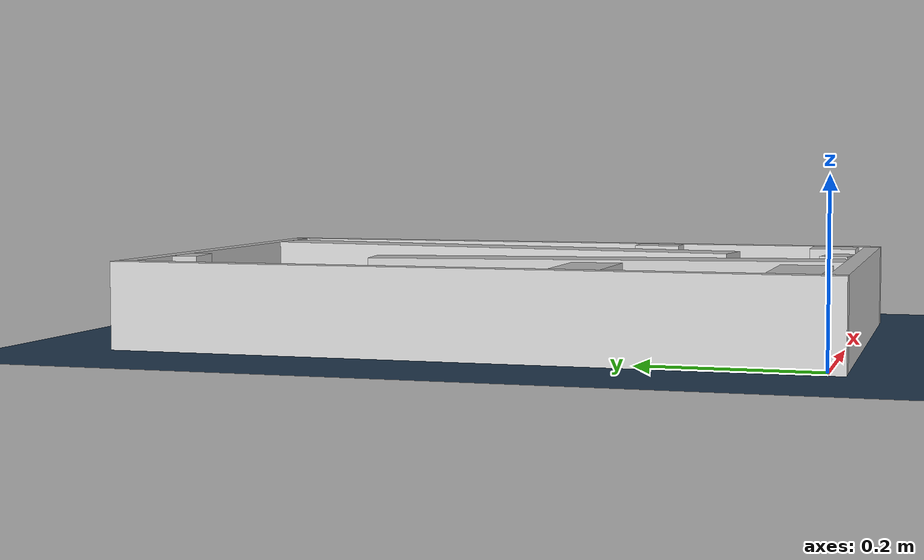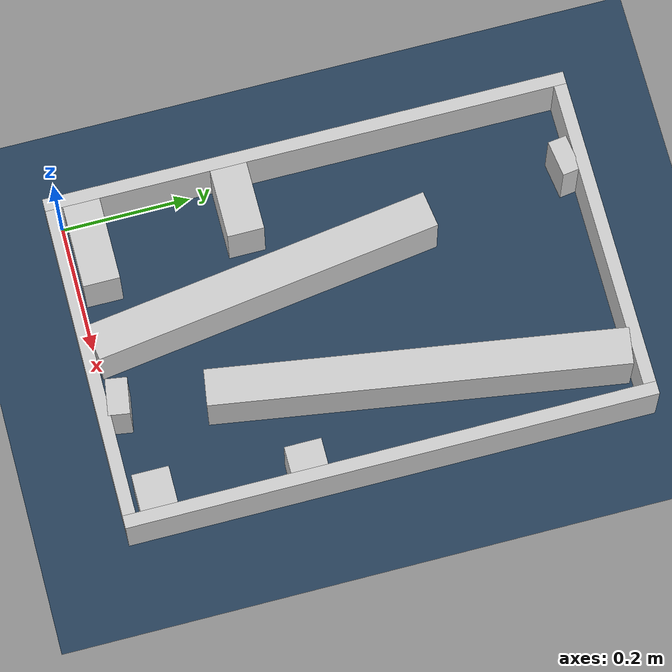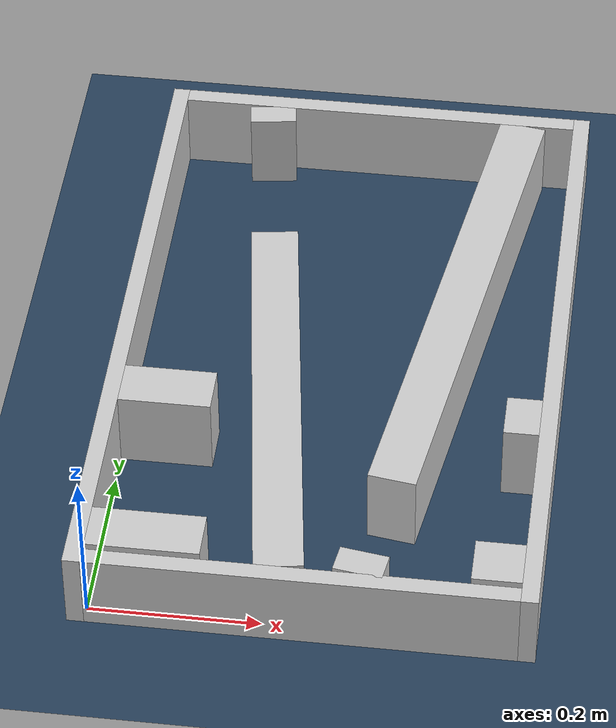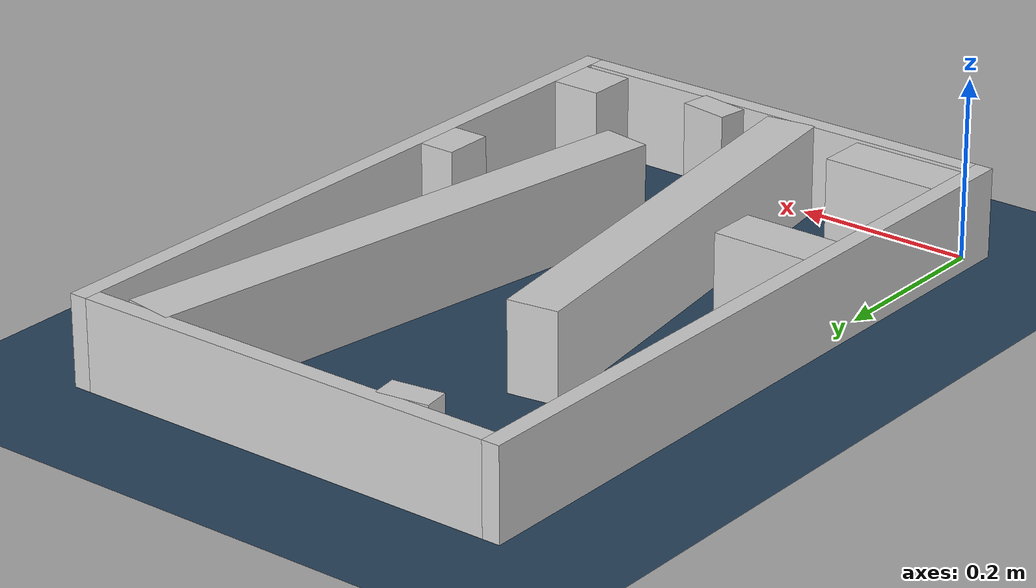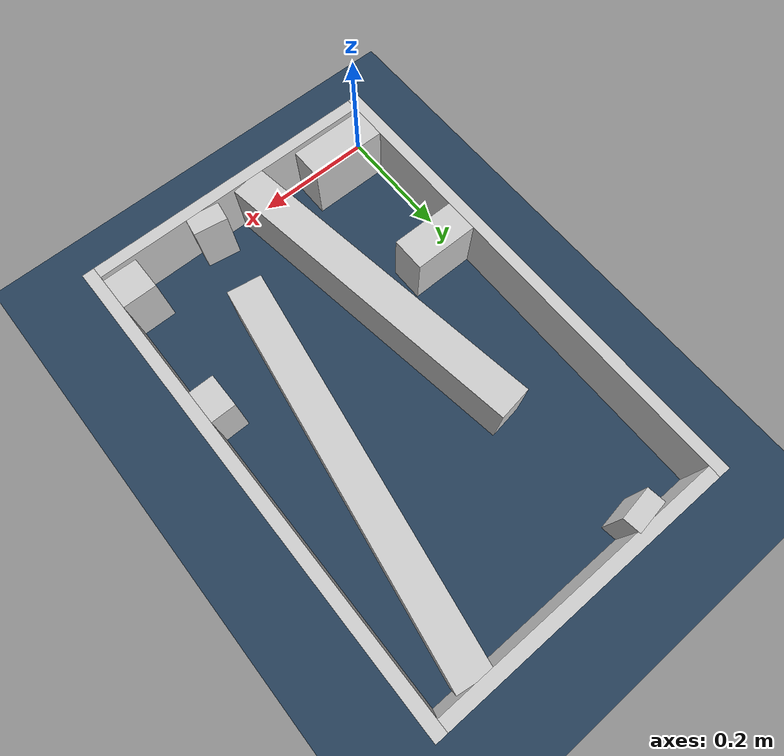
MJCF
<?xml version="1.0" ?>
<mujoco model="generated_real_template">
  <compiler angle="degree"/>
  <option timestep="0.002" integrator="implicitfast" iterations="100" cone="elliptic"/>
  <default>
    <geom density="1"/>
  </default>
  <asset>
    <texture builtin="gradient" height="3072" rgb1="0.3 0.5 0.7" rgb2="0 0 0" type="skybox" width="512"/>
    <texture builtin="checker" height="300" mark="edge" markrgb="0.8 0.8 0.8" name="groundplane" rgb1="0.2 0.3 0.4" rgb2="0.1 0.2 0.3" type="2d" width="300"/>
    <material name="groundplane" reflectance="0.2" texrepeat="5 5" texture="groundplane" texuniform="true"/>
  </asset>
  <worldbody>
    <light dir="0 0 -1" directional="true" pos="0 0 1.5"/>
    <geom name="floor" type="plane" condim="4" friction="0.5 0.005 0.001" material="groundplane" size="0 0 0.05"/>
    <body name="walls">
      <geom name="wall_boundary_left" type="box" condim="4" friction="1.0 0.005 0.0001" rgba="0.8 0.8 0.8 1" pos="-0.010000 0.387500 0.050000" euler="0 0 0.000000" size="0.010000 0.407500 0.050000"/>
      <geom name="wall_boundary_right" type="box" condim="4" friction="1.0 0.005 0.0001" rgba="0.8 0.8 0.8 1" pos="0.500000 0.387500 0.050000" euler="0 0 0.000000" size="0.010000 0.407500 0.050000"/>
      <geom name="wall_boundary_bottom" type="box" condim="4" friction="1.0 0.005 0.0001" rgba="0.8 0.8 0.8 1" pos="0.245000 -0.010000 0.050000" euler="0 0 0.000000" size="0.245000 0.010000 0.050000"/>
      <geom name="wall_boundary_top" type="box" condim="4" friction="1.0 0.005 0.0001" rgba="0.8 0.8 0.8 1" pos="0.245000 0.785000 0.050000" euler="0 0 0.000000" size="0.245000 0.010000 0.050000"/>
      <geom name="wall_inner_1_1" type="box" condim="4" friction="1.0 0.005 0.0001" rgba="0.8 0.8 0.8 1" pos="0.065232 0.035751 0.050000" euler="0 0 0.000000" size="0.065232 0.028500 0.050000"/>
      <geom name="wall_inner_1_2" type="box" condim="4" friction="1.0 0.005 0.0001" rgba="0.8 0.8 0.8 1" pos="0.461440 0.035751 0.050000" euler="0 0 0.000000" size="0.028560 0.028500 0.050000"/>
      <geom name="wall_inner_2_1" type="box" condim="4" friction="1.0 0.005 0.0001" rgba="0.8 0.8 0.8 1" pos="0.378516 0.460214 0.050000" euler="0 0 -98.796253" size="0.318532 0.028500 0.050000"/>
      <geom name="wall_inner_2_2" type="box" condim="4" friction="1.0 0.005 0.0001" rgba="0.8 0.8 0.8 1" pos="0.309850 0.016467 0.050000" euler="0 0 -98.796253" size="0.016663 0.028500 0.050000"/>
      <geom name="wall_inner_3_1" type="box" condim="4" friction="1.0 0.005 0.0001" rgba="0.8 0.8 0.8 1" pos="0.111776 0.760398 0.050000" euler="0 0 -81.926178" size="0.014748 0.028500 0.050000"/>
      <geom name="wall_inner_3_2" type="box" condim="4" friction="1.0 0.005 0.0001" rgba="0.8 0.8 0.8 1" pos="0.181181 0.271127 0.050000" euler="0 0 -81.926178" size="0.273842 0.028500 0.050000"/>
      <geom name="wall_inner_4_1" type="box" condim="4" friction="1.0 0.005 0.0001" rgba="0.8 0.8 0.8 1" pos="0.054382 0.264001 0.050000" euler="0 0 0.000000" size="0.054382 0.028500 0.050000"/>
      <geom name="wall_inner_4_2" type="box" condim="4" friction="1.0 0.005 0.0001" rgba="0.8 0.8 0.8 1" pos="0.469351 0.264001 0.050000" euler="0 0 0.000000" size="0.020649 0.028500 0.050000"/>
    </body>
  </worldbody>
</mujoco>
